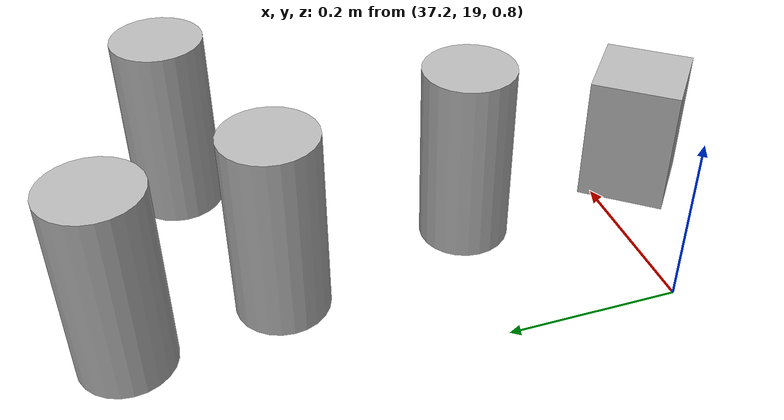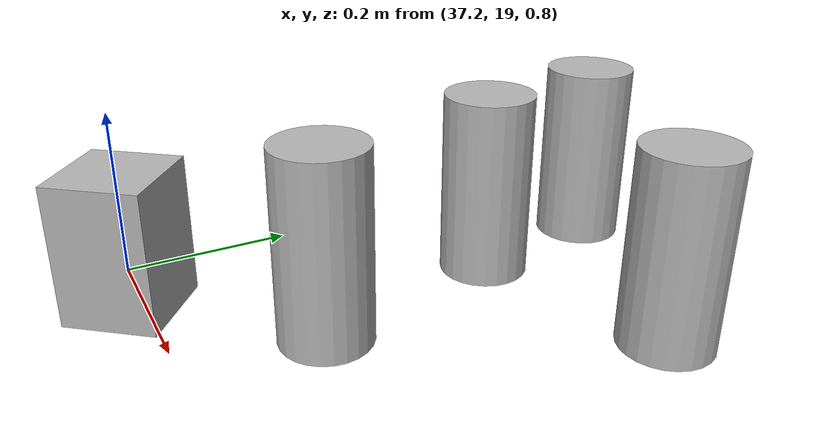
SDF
<sdf version="1.6">
 <world name="world">
  <model name="ground_plane">
   <static>1</static>
   <link name="link">
    <collision name="collision">
     <geometry><plane><normal>0 0 1</normal><size>100 100</size></plane></geometry>
     <surface><friction><ode><mu>100</mu><mu2>50</mu2></ode></friction></surface>
    </collision>
    <velocity_decay><linear>0</linear><angular>0</angular></velocity_decay>
   </link>
  </model>
  <physics name="default_physics" default="0" type="ode">
   <max_step_size>0.001</max_step_size>
   <real_time_factor>1</real_time_factor>
   <real_time_update_rate>1000</real_time_update_rate>
  </physics>
  <scene><ambient>0.4 0.4 0.4 1</ambient><background>0.7 0.7 0.7 1</background><shadows>1</shadows></scene>
  <gravity>0 0 -9.8</gravity>
  <magnetic_field>6e-06 2.3e-05 -4.2e-05</magnetic_field>
  <atmosphere type="adiabatic"/>
  <spherical_coordinates>
   <surface_model>EARTH_WGS84</surface_model>
   <latitude_deg>0</latitude_deg>
   <longitude_deg>0</longitude_deg>
   <elevation>0</elevation>
   <heading_deg>0</heading_deg>
  </spherical_coordinates>
  <light name="user_point_light_0" type="point">
   <pose>37.122 19.3882 1 0 -0 0</pose>
   <diffuse>0.5 0.5 0.5 1</diffuse>
   <specular>0.1 0.1 0.1 1</specular>
   <attenuation>
    <range>20</range>
    <constant>0.5</constant>
    <linear>0.01</linear>
    <quadratic>0.001</quadratic>
   </attenuation>
   <cast_shadows>0</cast_shadows>
   <direction>0 0 -1</direction>
  </light>
  <model name="beer">
   <link name="link">
    <pose>0 0 0.115 0 -0 0</pose>
    <inertial>
     <mass>0.39</mass>
     <inertia><ixx>0.00058</ixx><ixy>0</ixy><ixz>0</ixz><iyy>0.00058</iyy><iyz>0</iyz><izz>0.00019</izz></inertia>
    </inertial>
    <collision name="collision">
     <geometry><cylinder><radius>0.055</radius><length>0.23</length></cylinder></geometry>
    </collision>
    <visual name="visual">
     <geometry><cylinder><radius>0.055</radius><length>0.23</length></cylinder></geometry>
     <material>
      <script>
       <uri>model://beer/materials/scripts</uri>
       <uri>model://beer/materials/textures</uri>
       <name>Beer/Diffuse</name>
      </script>
     </material>
    </visual>
   </link>
   <pose>37.4134 19.1691 0.774996 2.5e-05 9.6e-05 9.2e-05</pose>
  </model>
  <model name="beer_clone">
   <link name="link">
    <pose>0 0 0.115 0 -0 0</pose>
    <inertial>
     <mass>0.39</mass>
     <inertia><ixx>0.00058</ixx><ixy>0</ixy><ixz>0</ixz><iyy>0.00058</iyy><iyz>0</iyz><izz>0.00019</izz></inertia>
    </inertial>
    <collision name="collision">
     <geometry><cylinder><radius>0.055</radius><length>0.23</length></cylinder></geometry>
    </collision>
    <visual name="visual">
     <geometry><cylinder><radius>0.055</radius><length>0.23</length></cylinder></geometry>
     <material>
      <script>
       <uri>model://beer/materials/scripts</uri>
       <uri>model://beer/materials/textures</uri>
       <name>Beer/Diffuse</name>
      </script>
     </material>
    </visual>
   </link>
   <pose>37.353 19.4142 0.775001 -5e-06 -9e-06 0.000581</pose>
  </model>
  <model name="beer_clone_0">
   <link name="link">
    <pose>0 0 0.115 0 -0 0</pose>
    <inertial>
     <mass>0.39</mass>
     <inertia><ixx>0.00058</ixx><ixy>0</ixy><ixz>0</ixz><iyy>0.00058</iyy><iyz>0</iyz><izz>0.00019</izz></inertia>
    </inertial>
    <collision name="collision">
     <geometry><cylinder><radius>0.055</radius><length>0.23</length></cylinder></geometry>
    </collision>
    <visual name="visual">
     <geometry><cylinder><radius>0.055</radius><length>0.23</length></cylinder></geometry>
     <material>
      <script>
       <uri>model://beer/materials/scripts</uri>
       <uri>model://beer/materials/textures</uri>
       <name>Beer/Diffuse</name>
      </script>
     </material>
    </visual>
   </link>
   <pose>37.317 19.5944 0.774991 7e-06 6e-06 0.001866</pose>
  </model>
  <model name="beer_clone_1">
   <link name="link">
    <pose>0 0 0.115 0 -0 0</pose>
    <inertial>
     <mass>0.39</mass>
     <inertia><ixx>0.00058</ixx><ixy>0</ixy><ixz>0</ixz><iyy>0.00058</iyy><iyz>0</iyz><izz>0.00019</izz></inertia>
    </inertial>
    <collision name="collision">
     <geometry><cylinder><radius>0.055</radius><length>0.23</length></cylinder></geometry>
    </collision>
    <visual name="visual">
     <geometry><cylinder><radius>0.055</radius><length>0.23</length></cylinder></geometry>
     <material>
      <script>
       <uri>model://beer/materials/scripts</uri>
       <uri>model://beer/materials/textures</uri>
       <name>Beer/Diffuse</name>
      </script>
     </material>
    </visual>
   </link>
   <pose>37.5955 19.4943 0.775001 -1.4e-05 -6e-06 0.002847</pose>
  </model>
  <model name="tea_box">
   <link name="link">
    <pose>0 0 0.075 0 -0 0</pose>
    <visual name="visual">
     <geometry><box><size>0.1 0.1 0.15</size></box></geometry>
     <material>
      <script>
       <uri>model://tea_box/materials/scripts</uri>
       <uri>model://tea_box/materials/textures</uri>
       <name>tea_pat</name>
      </script>
     </material>
    </visual>
    <collision name="collision"><geometry><box><size>0.1 0.1 0.15</size></box></geometry></collision>
   </link>
   <static>1</static>
   <pose>37.3621 18.9766 0.84335 0 0 -0.6764</pose>
  </model>
 </world>
</sdf>
